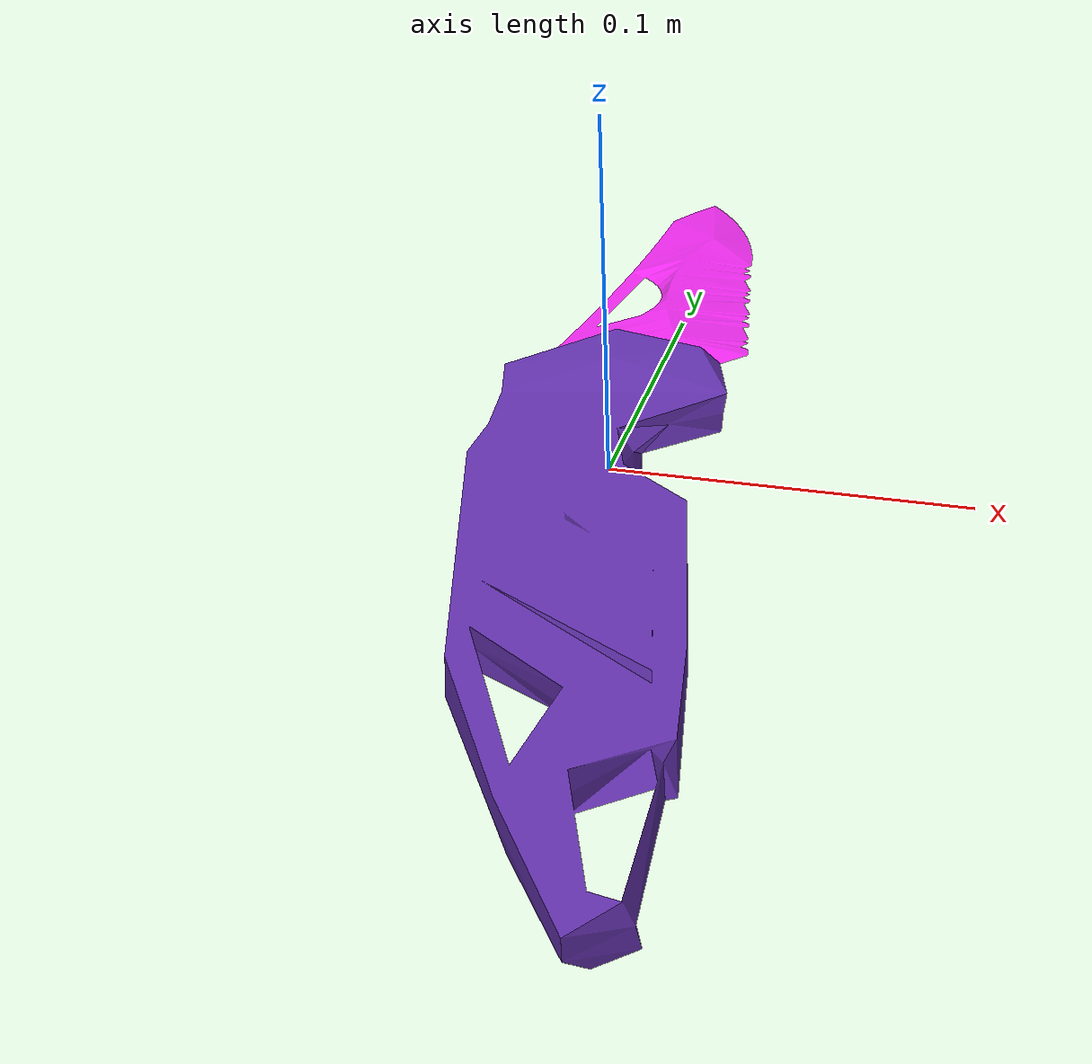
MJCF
<?xml version="1.0" encoding="utf-8"?>
<mujoco model="top_watertight_tiny">

  <asset>

    <mesh file="top_watertight_tiny.obj"/>

    <mesh file="top_watertight_tiny_collision_0.obj"/>

    <mesh file="top_watertight_tiny_collision_1.obj"/>

    <mesh file="top_watertight_tiny_collision_2.obj"/>

    <mesh file="top_watertight_tiny_collision_3.obj"/>

    <mesh file="top_watertight_tiny_collision_4.obj"/>

    <mesh file="top_watertight_tiny_collision_5.obj"/>

    <mesh file="top_watertight_tiny_collision_6.obj"/>

    <mesh file="top_watertight_tiny_collision_7.obj"/>

    <mesh file="top_watertight_tiny_collision_8.obj"/>

    <mesh file="top_watertight_tiny_collision_9.obj"/>

    <mesh file="top_watertight_tiny_collision_10.obj"/>

    <mesh file="top_watertight_tiny_collision_11.obj"/>

    <mesh file="bottom_watertight_tiny.obj"/>

    <mesh file="bottom_watertight_tiny_collision_0.obj"/>

    <mesh file="bottom_watertight_tiny_collision_1.obj"/>

    <mesh file="bottom_watertight_tiny_collision_2.obj"/>

    <mesh file="bottom_watertight_tiny_collision_3.obj"/>

    <mesh file="bottom_watertight_tiny_collision_4.obj"/>

    <mesh file="bottom_watertight_tiny_collision_5.obj"/>

    <mesh file="bottom_watertight_tiny_collision_6.obj"/>

    <mesh file="bottom_watertight_tiny_collision_7.obj"/>

    <mesh file="bottom_watertight_tiny_collision_8.obj"/>

    <mesh file="bottom_watertight_tiny_collision_9.obj"/>

    <mesh file="bottom_watertight_tiny_collision_10.obj"/>

    <mesh file="bottom_watertight_tiny_collision_11.obj"/>

    <mesh file="bottom_watertight_tiny_collision_12.obj"/>

    <mesh file="bottom_watertight_tiny_collision_13.obj"/>

    <mesh file="bottom_watertight_tiny_collision_14.obj"/>

  </asset>

  <worldbody>

    <body name="top_watertight_tiny">

      <freejoint/>

      <geom mesh="top_watertight_tiny" group="2" type="mesh" rgba="0.4 0.2 0.7 1" contype="0" conaffinity="0" solimp="0.90 0.95 0.001" solref="0.02 1.0" density="100" friction="0.95 0.4 0.3"/>

      <geom mesh="top_watertight_tiny_collision_0" rgba="0.8234097624691572 0.6105075634586405 0.22615119288378505 1" group="3" type="mesh" solimp="0.90 0.95 0.001" solref="0.02 1.0" density="100" friction="0.95 0.4 0.3"/>

      <geom mesh="top_watertight_tiny_collision_1" rgba="0.38813642522016356 0.781921917586694 0.41510848159001834 1" group="3" type="mesh" solimp="0.90 0.95 0.001" solref="0.02 1.0" density="100" friction="0.95 0.4 0.3"/>

      <geom mesh="top_watertight_tiny_collision_2" rgba="0.1937773925639078 0.3342793129272825 0.013782571523388687 1" group="3" type="mesh" solimp="0.90 0.95 0.001" solref="0.02 1.0" density="100" friction="0.95 0.4 0.3"/>

      <geom mesh="top_watertight_tiny_collision_3" rgba="0.4528601582606865 0.1330362672678066 0.6296904342736663 1" group="3" type="mesh" solimp="0.90 0.95 0.001" solref="0.02 1.0" density="100" friction="0.95 0.4 0.3"/>

      <geom mesh="top_watertight_tiny_collision_4" rgba="0.7986108733291688 0.6503828970661802 0.6635411834404737 1" group="3" type="mesh" solimp="0.90 0.95 0.001" solref="0.02 1.0" density="100" friction="0.95 0.4 0.3"/>

      <geom mesh="top_watertight_tiny_collision_5" rgba="0.30890221631577397 0.46324492296179154 0.3441056232135933 1" group="3" type="mesh" solimp="0.90 0.95 0.001" solref="0.02 1.0" density="100" friction="0.95 0.4 0.3"/>

      <geom mesh="top_watertight_tiny_collision_6" rgba="0.8820364342973707 0.021538764737347504 0.4204667503102376 1" group="3" type="mesh" solimp="0.90 0.95 0.001" solref="0.02 1.0" density="100" friction="0.95 0.4 0.3"/>

      <geom mesh="top_watertight_tiny_collision_7" rgba="0.3055681109493431 0.32138231830698316 0.8375937669521837 1" group="3" type="mesh" solimp="0.90 0.95 0.001" solref="0.02 1.0" density="100" friction="0.95 0.4 0.3"/>

      <geom mesh="top_watertight_tiny_collision_8" rgba="0.8481228044873019 0.1303779733239857 0.47502107069231236 1" group="3" type="mesh" solimp="0.90 0.95 0.001" solref="0.02 1.0" density="100" friction="0.95 0.4 0.3"/>

      <geom mesh="top_watertight_tiny_collision_9" rgba="0.21785859419222287 0.21888039187933284 0.38744635119611337 1" group="3" type="mesh" solimp="0.90 0.95 0.001" solref="0.02 1.0" density="100" friction="0.95 0.4 0.3"/>

      <geom mesh="top_watertight_tiny_collision_10" rgba="0.7584770150245761 0.5097556691433699 0.24230753730630095 1" group="3" type="mesh" solimp="0.90 0.95 0.001" solref="0.02 1.0" density="100" friction="0.95 0.4 0.3"/>

      <geom mesh="top_watertight_tiny_collision_11" rgba="0.7636685917419459 0.7570964190135542 0.9009549182542462 1" group="3" type="mesh" solimp="0.90 0.95 0.001" solref="0.02 1.0" density="100" friction="0.95 0.4 0.3"/>

      <body name="bottom_watertight_tiny">

        <geom mesh="bottom_watertight_tiny" group="2" type="mesh" rgba="1 0 1 0.8" contype="0" conaffinity="0" solimp="0.90 0.95 0.001" solref="0.02 1.0" density="100" friction="0.95 0.4 0.3"/>

        <geom mesh="bottom_watertight_tiny_collision_0" rgba="0.888437205607165 0.4998191124188115 0.47445755367718423 1" group="3" type="mesh" solimp="0.90 0.95 0.001" solref="0.02 1.0" density="100" friction="0.95 0.4 0.3"/>

        <geom mesh="bottom_watertight_tiny_collision_1" rgba="0.8204052623556178 0.18534061359219245 0.2791891320731278 1" group="3" type="mesh" solimp="0.90 0.95 0.001" solref="0.02 1.0" density="100" friction="0.95 0.4 0.3"/>

        <geom mesh="bottom_watertight_tiny_collision_2" rgba="0.21842837581634655 0.7998752610483 0.550659319386601 1" group="3" type="mesh" solimp="0.90 0.95 0.001" solref="0.02 1.0" density="100" friction="0.95 0.4 0.3"/>

        <geom mesh="bottom_watertight_tiny_collision_3" rgba="0.870415187440498 0.8416797116082836 0.5662949877119079 1" group="3" type="mesh" solimp="0.90 0.95 0.001" solref="0.02 1.0" density="100" friction="0.95 0.4 0.3"/>

        <geom mesh="bottom_watertight_tiny_collision_4" rgba="0.7106652178081031 0.3649835526765157 0.44987135212303053 1" group="3" type="mesh" solimp="0.90 0.95 0.001" solref="0.02 1.0" density="100" friction="0.95 0.4 0.3"/>

        <geom mesh="bottom_watertight_tiny_collision_5" rgba="0.9634128746920979 0.4306670595336519 0.6101008134685096 1" group="3" type="mesh" solimp="0.90 0.95 0.001" solref="0.02 1.0" density="100" friction="0.95 0.4 0.3"/>

        <geom mesh="bottom_watertight_tiny_collision_6" rgba="0.2926633751505745 0.2904356464568534 0.6796285660791822 1" group="3" type="mesh" solimp="0.90 0.95 0.001" solref="0.02 1.0" density="100" friction="0.95 0.4 0.3"/>

        <geom mesh="bottom_watertight_tiny_collision_7" rgba="0.35816792947467624 0.697361240582855 0.7236638209362918 1" group="3" type="mesh" solimp="0.90 0.95 0.001" solref="0.02 1.0" density="100" friction="0.95 0.4 0.3"/>

        <geom mesh="bottom_watertight_tiny_collision_8" rgba="0.44471745021269793 0.854765820646796 0.9287828024013544 1" group="3" type="mesh" solimp="0.90 0.95 0.001" solref="0.02 1.0" density="100" friction="0.95 0.4 0.3"/>

        <geom mesh="bottom_watertight_tiny_collision_9" rgba="0.815612036233734 0.6040933474812059 0.9428607254969288 1" group="3" type="mesh" solimp="0.90 0.95 0.001" solref="0.02 1.0" density="100" friction="0.95 0.4 0.3"/>

        <geom mesh="bottom_watertight_tiny_collision_10" rgba="0.7412112666028737 0.8737121649997365 0.7151369891226051 1" group="3" type="mesh" solimp="0.90 0.95 0.001" solref="0.02 1.0" density="100" friction="0.95 0.4 0.3"/>

        <geom mesh="bottom_watertight_tiny_collision_11" rgba="0.8896709335001429 0.3900161639941444 0.3959822271019714 1" group="3" type="mesh" solimp="0.90 0.95 0.001" solref="0.02 1.0" density="100" friction="0.95 0.4 0.3"/>

        <geom mesh="bottom_watertight_tiny_collision_12" rgba="0.7187432304874753 0.025253933899019088 0.0385900694769159 1" group="3" type="mesh" solimp="0.90 0.95 0.001" solref="0.02 1.0" density="100" friction="0.95 0.4 0.3"/>

        <geom mesh="bottom_watertight_tiny_collision_13" rgba="0.3451235663407164 0.9308339148040083 0.5058884070313233 1" group="3" type="mesh" solimp="0.90 0.95 0.001" solref="0.02 1.0" density="100" friction="0.95 0.4 0.3"/>

        <geom mesh="bottom_watertight_tiny_collision_14" rgba="0.8224681894174357 0.49179189256382905 0.5150945730724266 1" group="3" type="mesh" solimp="0.90 0.95 0.001" solref="0.02 1.0" density="100" friction="0.95 0.4 0.3"/>

        <site name="bottom_watertight_tiny_touch_site" pos="0 0 0" size="0.2" rgba="1 0 0 0." type="sphere"/>
      </body>

      <site name="top_watertight_tiny_touch_site" pos="0 0 0" size="0.2" rgba="1 0 0 0." type="sphere"/>
    </body>

  </worldbody>

  <sensor>
    <touch name="top_watertight_tiny_touch" site="top_watertight_tiny_touch_site"/>
    <touch name="bottom_watertight_tiny_touch" site="bottom_watertight_tiny_touch_site"/>
  </sensor>
</mujoco>
